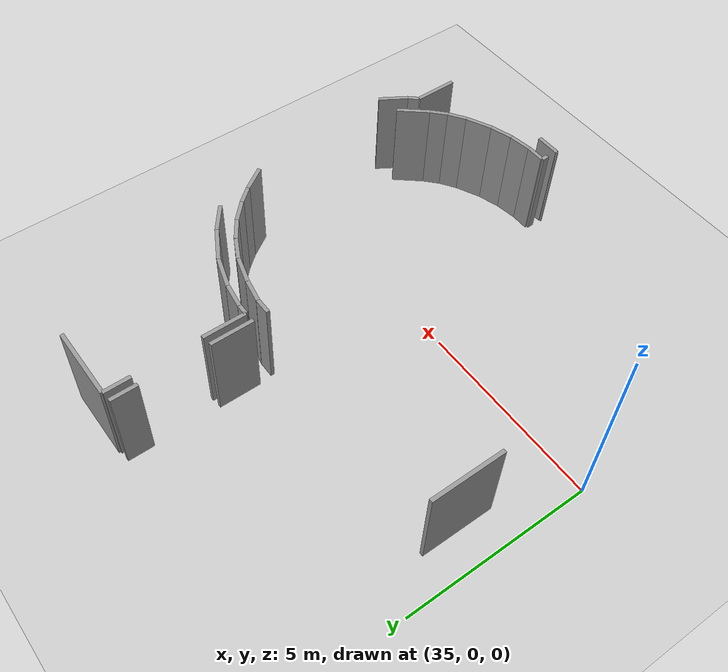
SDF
<sdf version="1.6">
 <world name="default">
  <model name="ground_plane">
   <static>1</static>
   <link name="link">
    <collision name="collision">
     <geometry><plane><normal>0 0 1</normal><size>100 100</size></plane></geometry>
     <surface><friction><ode><mu>100</mu><mu2>50</mu2></ode></friction></surface>
    </collision>
    <visual name="visual">
     <cast_shadows>0</cast_shadows>
     <geometry><plane><normal>0 0 1</normal><size>100 100</size></plane></geometry>
     <material>
      <script><uri>file://media/materials/scripts/gazebo.material</uri><name>Gazebo/Grey</name></script>
     </material>
    </visual>
   </link>
  </model>
  <model name="50041175">
   <static>1</static>
   <link name="Wall_87">
    <collision name="Wall_87_Collision">
     <geometry><box><size>1.92976881919 0.1 2.5</size></box></geometry>
     <pose>0.964884409593 0 1.25 0 0 0</pose>
    </collision>
    <visual name="Wall_87_Visual">
     <pose>0.964884409593 0 1.25 0 0 0</pose>
     <geometry><box><size>1.92976881919 0.1 2.5</size></box></geometry>
     <material>
      <script><uri>file://media/materials/scripts/gazebo.material</uri><name>Gazebo/Grey</name></script>
      <ambient>1 1 1 1</ambient>
     </material>
    </visual>
    <pose>89.9616181386 -6.39922219539 0 0 0 1.57079632679</pose>
   </link>
   <link name="Wall_88">
    <collision name="Wall_88_Collision">
     <geometry><box><size>0.408347419392 0.1 2.5</size></box></geometry>
     <pose>0.204173709696 0 1.25 0 0 0</pose>
    </collision>
    <visual name="Wall_88_Visual">
     <pose>0.204173709696 0 1.25 0 0 0</pose>
     <geometry><box><size>0.408347419392 0.1 2.5</size></box></geometry>
     <material>
      <script><uri>file://media/materials/scripts/gazebo.material</uri><name>Gazebo/Grey</name></script>
      <ambient>1 1 1 1</ambient>
     </material>
    </visual>
    <pose>95.6531906511 -4.46945337621 0 0 0 0.0</pose>
   </link>
   <link name="Wall_89">
    <collision name="Wall_89_Collision">
     <geometry><box><size>0.604056605529 0.1 2.5</size></box></geometry>
     <pose>0.302028302764 0 1.25 0 0 0</pose>
    </collision>
    <visual name="Wall_89_Visual">
     <pose>0.302028302764 0 1.25 0 0 0</pose>
     <geometry><box><size>0.604056605529 0.1 2.5</size></box></geometry>
     <material>
      <script><uri>file://media/materials/scripts/gazebo.material</uri><name>Gazebo/Grey</name></script>
      <ambient>1 1 1 1</ambient>
     </material>
    </visual>
    <pose>96.0615380705 -4.46945337621 0 0 0 -0.17895020867</pose>
   </link>
   <link name="Wall_90">
    <collision name="Wall_90_Collision">
     <geometry><box><size>0.718918206342 0.1 2.5</size></box></geometry>
     <pose>0.359459103171 0 1.25 0 0 0</pose>
    </collision>
    <visual name="Wall_90_Visual">
     <pose>0.359459103171 0 1.25 0 0 0</pose>
     <geometry><box><size>0.718918206342 0.1 2.5</size></box></geometry>
     <material>
      <script><uri>file://media/materials/scripts/gazebo.material</uri><name>Gazebo/Grey</name></script>
      <ambient>1 1 1 1</ambient>
     </material>
    </visual>
    <pose>96.6559485531 -4.57697342501 0 0 0 -0.280873655894</pose>
   </link>
   <link name="Wall_91">
    <collision name="Wall_91_Collision">
     <geometry><box><size>0.612948401776 0.1 2.5</size></box></geometry>
     <pose>0.306474200888 0 1.25 0 0 0</pose>
    </collision>
    <visual name="Wall_91_Visual">
     <pose>0.306474200888 0 1.25 0 0 0</pose>
     <geometry><box><size>0.612948401776 0.1 2.5</size></box></geometry>
     <material>
      <script><uri>file://media/materials/scripts/gazebo.material</uri><name>Gazebo/Grey</name></script>
      <ambient>1 1 1 1</ambient>
     </material>
    </visual>
    <pose>97.3466949659 -4.77625408284 0 0 0 -0.470416793441</pose>
   </link>
   <link name="Wall_92">
    <collision name="Wall_92_Collision">
     <geometry><box><size>0.593692128065 0.1 2.5</size></box></geometry>
     <pose>0.296846064033 0 1.25 0 0 0</pose>
    </collision>
    <visual name="Wall_92_Visual">
     <pose>0.296846064033 0 1.25 0 0 0</pose>
     <geometry><box><size>0.593692128065 0.1 2.5</size></box></geometry>
     <material>
      <script><uri>file://media/materials/scripts/gazebo.material</uri><name>Gazebo/Grey</name></script>
      <ambient>1 1 1 1</ambient>
     </material>
    </visual>
    <pose>97.8930645756 -5.05407775504 0 0 0 -0.609200211903</pose>
   </link>
   <link name="Wall_93">
    <collision name="Wall_93_Collision">
     <geometry><box><size>0.594693404068 0.1 2.5</size></box></geometry>
     <pose>0.297346702034 0 1.25 0 0 0</pose>
    </collision>
    <visual name="Wall_93_Visual">
     <pose>0.297346702034 0 1.25 0 0 0</pose>
     <geometry><box><size>0.594693404068 0.1 2.5</size></box></geometry>
     <material>
      <script><uri>file://media/materials/scripts/gazebo.material</uri><name>Gazebo/Grey</name></script>
      <ambient>1 1 1 1</ambient>
     </material>
    </visual>
    <pose>98.3799550093 -5.39379535605 0 0 0 -0.774064207147</pose>
   </link>
   <link name="Wall_94">
    <collision name="Wall_94_Collision">
     <geometry><box><size>0.482037656817 0.1 2.5</size></box></geometry>
     <pose>0.241018828408 0 1.25 0 0 0</pose>
    </collision>
    <visual name="Wall_94_Visual">
     <pose>0.241018828408 0 1.25 0 0 0</pose>
     <geometry><box><size>0.482037656817 0.1 2.5</size></box></geometry>
     <material>
      <script><uri>file://media/materials/scripts/gazebo.material</uri><name>Gazebo/Grey</name></script>
      <ambient>1 1 1 1</ambient>
     </material>
    </visual>
    <pose>98.8052056988 -5.8095141263 0 0 0 -0.883619853666</pose>
   </link>
   <link name="Wall_95">
    <collision name="Wall_95_Collision">
     <geometry><box><size>0.694397197482 0.1 2.5</size></box></geometry>
     <pose>0.347198598741 0 1.25 0 0 0</pose>
    </collision>
    <visual name="Wall_95_Visual">
     <pose>0.347198598741 0 1.25 0 0 0</pose>
     <geometry><box><size>0.694397197482 0.1 2.5</size></box></geometry>
     <material>
      <script><uri>file://media/materials/scripts/gazebo.material</uri><name>Gazebo/Grey</name></script>
      <ambient>1 1 1 1</ambient>
     </material>
    </visual>
    <pose>99.1109896674 -6.18214862168 0 0 0 -0.996093781694</pose>
   </link>
   <link name="Wall_103">
    <collision name="Wall_103_Collision">
     <geometry><box><size>0.861825175193 0.1 2.5</size></box></geometry>
     <pose>0.430912587596 0 1.25 0 0 0</pose>
    </collision>
    <visual name="Wall_103_Visual">
     <pose>0.430912587596 0 1.25 0 0 0</pose>
     <geometry><box><size>0.861825175193 0.1 2.5</size></box></geometry>
     <material>
      <script><uri>file://media/materials/scripts/gazebo.material</uri><name>Gazebo/Grey</name></script>
      <ambient>1 1 1 1</ambient>
     </material>
    </visual>
    <pose>99.2211786536 -10.871852878 0 0 0 -2.26723393295</pose>
   </link>
   <link name="Wall_104">
    <collision name="Wall_104_Collision">
     <geometry><box><size>0.46716347441 0.1 2.5</size></box></geometry>
     <pose>0.233581737205 0 1.25 0 0 0</pose>
    </collision>
    <visual name="Wall_104_Visual">
     <pose>0.233581737205 0 1.25 0 0 0</pose>
     <geometry><box><size>0.46716347441 0.1 2.5</size></box></geometry>
     <material>
      <script><uri>file://media/materials/scripts/gazebo.material</uri><name>Gazebo/Grey</name></script>
      <ambient>1 1 1 1</ambient>
     </material>
    </visual>
    <pose>98.6683273388 -11.5329867951 0 0 0 -2.38620856895</pose>
   </link>
   <link name="Wall_105">
    <collision name="Wall_105_Collision">
     <geometry><box><size>0.502425925982 0.1 2.5</size></box></geometry>
     <pose>0.251212962991 0 1.25 0 0 0</pose>
    </collision>
    <visual name="Wall_105_Visual">
     <pose>0.251212962991 0 1.25 0 0 0</pose>
     <geometry><box><size>0.502425925982 0.1 2.5</size></box></geometry>
     <material>
      <script><uri>file://media/materials/scripts/gazebo.material</uri><name>Gazebo/Grey</name></script>
      <ambient>1 1 1 1</ambient>
     </material>
    </visual>
    <pose>98.328228461 -11.8532592809 0 0 0 -2.54439926134</pose>
   </link>
   <link name="Wall_106">
    <collision name="Wall_106_Collision">
     <geometry><box><size>0.709815849215 0.1 2.5</size></box></geometry>
     <pose>0.354907924608 0 1.25 0 0 0</pose>
    </collision>
    <visual name="Wall_106_Visual">
     <pose>0.354907924608 0 1.25 0 0 0</pose>
     <geometry><box><size>0.709815849215 0.1 2.5</size></box></geometry>
     <material>
      <script><uri>file://media/materials/scripts/gazebo.material</uri><name>Gazebo/Grey</name></script>
      <ambient>1 1 1 1</ambient>
     </material>
    </visual>
    <pose>97.9127638753 -12.1357853666 0 0 0 -2.6936400799</pose>
   </link>
   <link name="Wall_107">
    <collision name="Wall_107_Collision">
     <geometry><box><size>0.586144318977 0.1 2.5</size></box></geometry>
     <pose>0.293072159489 0 1.25 0 0 0</pose>
    </collision>
    <visual name="Wall_107_Visual">
     <pose>0.293072159489 0 1.25 0 0 0</pose>
     <geometry><box><size>0.586144318977 0.1 2.5</size></box></geometry>
     <material>
      <script><uri>file://media/materials/scripts/gazebo.material</uri><name>Gazebo/Grey</name></script>
      <ambient>1 1 1 1</ambient>
     </material>
    </visual>
    <pose>97.2729814572 -12.4432215345 0 0 0 -2.84679215402</pose>
   </link>
   <link name="Wall_108">
    <collision name="Wall_108_Collision">
     <geometry><box><size>0.575430453782 0.1 2.5</size></box></geometry>
     <pose>0.287715226891 0 1.25 0 0 0</pose>
    </collision>
    <visual name="Wall_108_Visual">
     <pose>0.287715226891 0 1.25 0 0 0</pose>
     <geometry><box><size>0.575430453782 0.1 2.5</size></box></geometry>
     <material>
      <script><uri>file://media/materials/scripts/gazebo.material</uri><name>Gazebo/Grey</name></script>
      <ambient>1 1 1 1</ambient>
     </material>
    </visual>
    <pose>96.7121233303 -12.6135251579 0 0 0 -2.99038744026</pose>
   </link>
   <link name="Wall_109">
    <collision name="Wall_109_Collision">
     <geometry><box><size>0.474435392652 0.1 2.5</size></box></geometry>
     <pose>0.237217696326 0 1.25 0 0 0</pose>
    </collision>
    <visual name="Wall_109_Visual">
     <pose>0.237217696326 0 1.25 0 0 0</pose>
     <geometry><box><size>0.474435392652 0.1 2.5</size></box></geometry>
     <material>
      <script><uri>file://media/materials/scripts/gazebo.material</uri><name>Gazebo/Grey</name></script>
      <ambient>1 1 1 1</ambient>
     </material>
    </visual>
    <pose>96.1432583913 -12.7002020767 0 0 0 3.14159265359</pose>
   </link>
   <link name="Wall_110">
    <collision name="Wall_110_Collision">
     <geometry><box><size>0.175895682676 0.1 2.5</size></box></geometry>
     <pose>0.087947841338 0 1.25 0 0 0</pose>
    </collision>
    <visual name="Wall_110_Visual">
     <pose>0.087947841338 0 1.25 0 0 0</pose>
     <geometry><box><size>0.175895682676 0.1 2.5</size></box></geometry>
     <material>
      <script><uri>file://media/materials/scripts/gazebo.material</uri><name>Gazebo/Grey</name></script>
      <ambient>1 1 1 1</ambient>
     </material>
    </visual>
    <pose>95.6688229986 -12.7002020767 0 0 0 -1.57079632679</pose>
   </link>
   <link name="Wall_131">
    <collision name="Wall_131_Collision">
     <geometry><box><size>0.76955116794 0.1 2.5</size></box></geometry>
     <pose>0.38477558397 0 1.25 0 0 0</pose>
    </collision>
    <visual name="Wall_131_Visual">
     <pose>0.38477558397 0 1.25 0 0 0</pose>
     <geometry><box><size>0.76955116794 0.1 2.5</size></box></geometry>
     <material>
      <script><uri>file://media/materials/scripts/gazebo.material</uri><name>Gazebo/Grey</name></script>
      <ambient>1 1 1 1</ambient>
     </material>
    </visual>
    <pose>98.9971150058 -5.31792127906 0 0 0 2.47077214729</pose>
   </link>
   <link name="Wall_132">
    <collision name="Wall_132_Collision">
     <geometry><box><size>0.904939926821 0.1 2.5</size></box></geometry>
     <pose>0.452469963411 0 1.25 0 0 0</pose>
    </collision>
    <visual name="Wall_132_Visual">
     <pose>0.452469963411 0 1.25 0 0 0</pose>
     <geometry><box><size>0.904939926821 0.1 2.5</size></box></geometry>
     <material>
      <script><uri>file://media/materials/scripts/gazebo.material</uri><name>Gazebo/Grey</name></script>
      <ambient>1 1 1 1</ambient>
     </material>
    </visual>
    <pose>98.3943164343 -4.83954602646 0 0 0 2.62836929911</pose>
   </link>
   <link name="Wall_133">
    <collision name="Wall_133_Collision">
     <geometry><box><size>0.837533195606 0.1 2.5</size></box></geometry>
     <pose>0.418766597803 0 1.25 0 0 0</pose>
    </collision>
    <visual name="Wall_133_Visual">
     <pose>0.418766597803 0 1.25 0 0 0</pose>
     <geometry><box><size>0.837533195606 0.1 2.5</size></box></geometry>
     <material>
      <script><uri>file://media/materials/scripts/gazebo.material</uri><name>Gazebo/Grey</name></script>
      <ambient>1 1 1 1</ambient>
     </material>
    </visual>
    <pose>97.6059631687 -4.39523149854 0 0 0 2.83467040232</pose>
   </link>
   <link name="Wall_134">
    <collision name="Wall_134_Collision">
     <geometry><box><size>0.642123635307 0.1 2.5</size></box></geometry>
     <pose>0.321061817653 0 1.25 0 0 0</pose>
    </collision>
    <visual name="Wall_134_Visual">
     <pose>0.321061817653 0 1.25 0 0 0</pose>
     <geometry><box><size>0.642123635307 0.1 2.5</size></box></geometry>
     <material>
      <script><uri>file://media/materials/scripts/gazebo.material</uri><name>Gazebo/Grey</name></script>
      <ambient>1 1 1 1</ambient>
     </material>
    </visual>
    <pose>96.8075696148 -4.14219081631 0 0 0 2.99879989302</pose>
   </link>
   <link name="Wall_135">
    <collision name="Wall_135_Collision">
     <geometry><box><size>0.265877000114 0.1 2.5</size></box></geometry>
     <pose>0.132938500057 0 1.25 0 0 0</pose>
    </collision>
    <visual name="Wall_135_Visual">
     <pose>0.132938500057 0 1.25 0 0 0</pose>
     <geometry><box><size>0.265877000114 0.1 2.5</size></box></geometry>
     <material>
      <script><uri>file://media/materials/scripts/gazebo.material</uri><name>Gazebo/Grey</name></script>
      <ambient>1 1 1 1</ambient>
     </material>
    </visual>
    <pose>96.1719812412 -4.05081148406 0 0 0 3.14159265359</pose>
   </link>
   <link name="Wall_136">
    <collision name="Wall_136_Collision">
     <geometry><box><size>1.13201072659 0.1 2.5</size></box></geometry>
     <pose>0.566005363293 0 1.25 0 0 0</pose>
    </collision>
    <visual name="Wall_136_Visual">
     <pose>0.566005363293 0 1.25 0 0 0</pose>
     <geometry><box><size>1.13201072659 0.1 2.5</size></box></geometry>
     <material>
      <script><uri>file://media/materials/scripts/gazebo.material</uri><name>Gazebo/Grey</name></script>
      <ambient>1 1 1 1</ambient>
     </material>
    </visual>
    <pose>95.9061042411 -4.05081148406 0 0 0 1.57079632679</pose>
   </link>
   <link name="Wall_137">
    <collision name="Wall_137_Collision">
     <geometry><box><size>0.688967121233 0.1 2.5</size></box></geometry>
     <pose>0.344483560617 0 1.25 0 0 0</pose>
    </collision>
    <visual name="Wall_137_Visual">
     <pose>0.344483560617 0 1.25 0 0 0</pose>
     <geometry><box><size>0.688967121233 0.1 2.5</size></box></geometry>
     <material>
      <script><uri>file://media/materials/scripts/gazebo.material</uri><name>Gazebo/Grey</name></script>
      <ambient>1 1 1 1</ambient>
     </material>
    </visual>
    <pose>95.9061042411 -1.16327542163 0 0 0 1.57079632679</pose>
   </link>
   <link name="Wall_138">
    <collision name="Wall_138_Collision">
     <geometry><box><size>1.85186126609 0.1 2.5</size></box></geometry>
     <pose>0.925930633047 0 1.25 0 0 0</pose>
    </collision>
    <visual name="Wall_138_Visual">
     <pose>0.925930633047 0 1.25 0 0 0</pose>
     <geometry><box><size>1.85186126609 0.1 2.5</size></box></geometry>
     <material>
      <script><uri>file://media/materials/scripts/gazebo.material</uri><name>Gazebo/Grey</name></script>
      <ambient>1 1 1 1</ambient>
     </material>
    </visual>
    <pose>95.9061042411 -0.474308300395 0 0 0 0.0</pose>
   </link>
   <link name="Wall_148">
    <collision name="Wall_148_Collision">
     <geometry><box><size>1.1261644828 0.1 2.5</size></box></geometry>
     <pose>0.563082241399 0 1.25 0 0 0</pose>
    </collision>
    <visual name="Wall_148_Visual">
     <pose>0.563082241399 0 1.25 0 0 0</pose>
     <geometry><box><size>1.1261644828 0.1 2.5</size></box></geometry>
     <material>
      <script><uri>file://media/materials/scripts/gazebo.material</uri><name>Gazebo/Grey</name></script>
      <ambient>1 1 1 1</ambient>
     </material>
    </visual>
    <pose>99.2328711412 -12.7482429496 0 0 0 1.57079632679</pose>
   </link>
   <link name="Wall_149">
    <collision name="Wall_149_Collision">
     <geometry><box><size>0.29340540413 0.1 2.5</size></box></geometry>
     <pose>0.146702702065 0 1.25 0 0 0</pose>
    </collision>
    <visual name="Wall_149_Visual">
     <pose>0.146702702065 0 1.25 0 0 0</pose>
     <geometry><box><size>0.29340540413 0.1 2.5</size></box></geometry>
     <material>
      <script><uri>file://media/materials/scripts/gazebo.material</uri><name>Gazebo/Grey</name></script>
      <ambient>1 1 1 1</ambient>
     </material>
    </visual>
    <pose>99.2328711412 -11.6220784668 0 0 0 0.839945226476</pose>
   </link>
   <link name="Wall_150">
    <collision name="Wall_150_Collision">
     <geometry><box><size>0.770588029506 0.1 2.5</size></box></geometry>
     <pose>0.385294014753 0 1.25 0 0 0</pose>
    </collision>
    <visual name="Wall_150_Visual">
     <pose>0.385294014753 0 1.25 0 0 0</pose>
     <geometry><box><size>0.770588029506 0.1 2.5</size></box></geometry>
     <material>
      <script><uri>file://media/materials/scripts/gazebo.material</uri><name>Gazebo/Grey</name></script>
      <ambient>1 1 1 1</ambient>
     </material>
    </visual>
    <pose>99.4287203081 -11.4036068782 0 0 0 1.01889283264</pose>
   </link>
   <link name="Wall_163">
    <collision name="Wall_163_Collision">
     <geometry><box><size>0.689856767027 0.1 2.5</size></box></geometry>
     <pose>0.344928383514 0 1.25 0 0 0</pose>
    </collision>
    <visual name="Wall_163_Visual">
     <pose>0.344928383514 0 1.25 0 0 0</pose>
     <geometry><box><size>0.689856767027 0.1 2.5</size></box></geometry>
     <material>
      <script><uri>file://media/materials/scripts/gazebo.material</uri><name>Gazebo/Grey</name></script>
      <ambient>1 1 1 1</ambient>
     </material>
    </visual>
    <pose>95.651665544 -0.493499231092 0 0 0 -1.57079632679</pose>
   </link>
   <link name="Wall_164">
    <collision name="Wall_164_Collision">
     <geometry><box><size>1.12883342018 0.1 2.5</size></box></geometry>
     <pose>0.56441671009 0 1.25 0 0 0</pose>
    </collision>
    <visual name="Wall_164_Visual">
     <pose>0.56441671009 0 1.25 0 0 0</pose>
     <geometry><box><size>1.12883342018 0.1 2.5</size></box></geometry>
     <material>
      <script><uri>file://media/materials/scripts/gazebo.material</uri><name>Gazebo/Grey</name></script>
      <ambient>1 1 1 1</ambient>
     </material>
    </visual>
    <pose>95.651665544 -2.95514914276 0 0 0 -1.57079632679</pose>
   </link>
   <link name="Wall_181">
    <collision name="Wall_181_Collision">
     <geometry><box><size>0.0283415731479 0.1 2.5</size></box></geometry>
     <pose>0.014170786574 0 1.25 0 0 0</pose>
    </collision>
    <visual name="Wall_181_Visual">
     <pose>0.014170786574 0 1.25 0 0 0</pose>
     <geometry><box><size>0.0283415731479 0.1 2.5</size></box></geometry>
     <material>
      <script><uri>file://media/materials/scripts/gazebo.material</uri><name>Gazebo/Grey</name></script>
      <ambient>1 1 1 1</ambient>
     </material>
    </visual>
    <pose>95.6395917797 -13.138289084 0 0 0 -1.57079632679</pose>
   </link>
   <link name="Wall_182">
    <collision name="Wall_182_Collision">
     <geometry><box><size>0.618303826748 0.1 2.5</size></box></geometry>
     <pose>0.309151913374 0 1.25 0 0 0</pose>
    </collision>
    <visual name="Wall_182_Visual">
     <pose>0.309151913374 0 1.25 0 0 0</pose>
     <geometry><box><size>0.618303826748 0.1 2.5</size></box></geometry>
     <material>
      <script><uri>file://media/materials/scripts/gazebo.material</uri><name>Gazebo/Grey</name></script>
      <ambient>1 1 1 1</ambient>
     </material>
    </visual>
    <pose>95.6395917797 -13.1666306572 0 0 0 0.0</pose>
   </link>
   <pose>-54.05 8.33479849523 0 0 0 0</pose>
  </model>
 </world>
</sdf>
